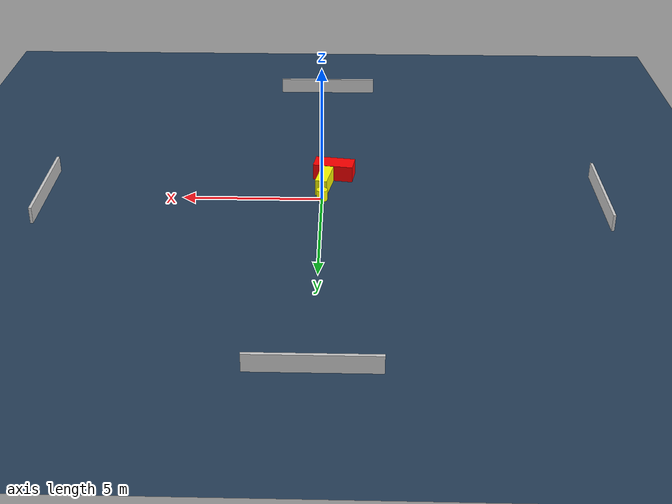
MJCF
<?xml version="1.0" ?>
<mujoco model="generated_environment">
  <option timestep="0.01" integrator="RK4" cone="elliptic"/>
  <default>
    <geom density="1"/>
  </default>
  <asset>
    <texture builtin="gradient" height="3072" name="skybox" rgb1="0.3 0.5 0.7" rgb2="0 0 0" type="skybox" width="512"/>
    <texture builtin="checker" height="300" name="groundplane" rgb1="0.2 0.3 0.4" rgb2="0.1 0.2 0.3" type="2d" width="300"/>
    <material name="groundplane" reflectance="0.2" texrepeat="5 5" texture="groundplane"/>
  </asset>
  <worldbody>
    <light dir="0 0 -1" directional="true" pos="0 0 1.5"/>
    <geom condim="3" friction="0.5 0.005 0.001" material="groundplane" name="floor" pos="0 0 0" size="0 0 0.05" type="plane"/>
    <body name="walls">
      <geom name="wall_1" condim="4" pos="-10.0 0.0 0.3" rgba="0.800000011920929 0.800000011920929 0.800000011920929 1.0" size="0.05 2.0 0.3" type="box"/>
      <geom name="wall_2" condim="4" pos="10.0 0.0 0.3" rgba="0.800000011920929 0.800000011920929 0.800000011920929 1.0" size="0.05 2.0 0.3" type="box"/>
      <geom name="wall_3" condim="4" pos="0.0 -10.0 0.3" rgba="0.800000011920929 0.800000011920929 0.800000011920929 1.0" size="2.0 0.05 0.3" type="box"/>
      <geom name="wall_4" condim="4" pos="0.0 10.0 0.3" rgba="0.800000011920929 0.800000011920929 0.800000011920929 1.0" size="2.0 0.05 0.3" type="box"/>
    </body>
    <body name="robot">
      <joint name="joint_x" type="slide" pos="0 0 0" axis="1 0 0"/>
      <joint name="joint_y" type="slide" pos="0 0 0" axis="0 1 0"/>
      <geom name="robot" type="cylinder" pos="0.0 0.0 0.2" size="0.2 0.2 0.0" mass="5.0" friction="1.0 0.005 0.0001" condim="4" rgba="1.0 1.0 0.0 1.0"/>
    </body>
    <body name="obstacle_1_movable">
      <geom name="obstacle_1_movable" condim="4" pos="-0.06394240108229829 -0.871240718267579 0.3" euler="0 0 259.03498944134554" friction="0.0 0.005 0.001" rgba="1.0 1.0 0.0 1.0" size="0.6135185660339553 0.21512405054691963 0.3" type="box" mass="0.1"/>
      <joint type="free"/>
    </body>
    <body name="obstacle_2_static">
      <geom name="obstacle_2_static" condim="4" pos="-0.40907369601071325 -1.8238977693201706 0.3" euler="0 0 261.64328678904644" friction="0.0 0.005 0.001" rgba="1.0 0.0 0.0 1.0" size="0.36213860547852517 0.7381081076361427 0.3" type="box"/>
    </body>
  </worldbody>
  <actuator>
    <motor name="actuator_x" joint="joint_x" gear="1" ctrlrange="-1 1"/>
    <motor name="actuator_y" joint="joint_y" gear="1" ctrlrange="-1 1"/>
  </actuator>
</mujoco>
